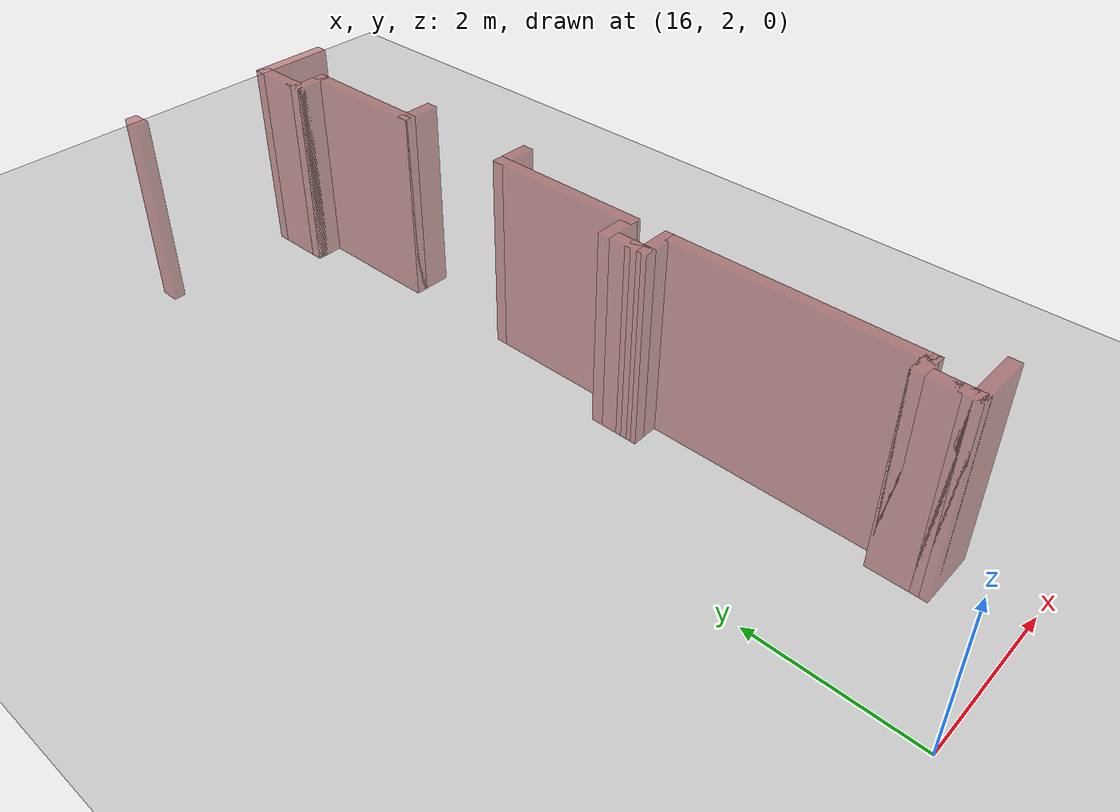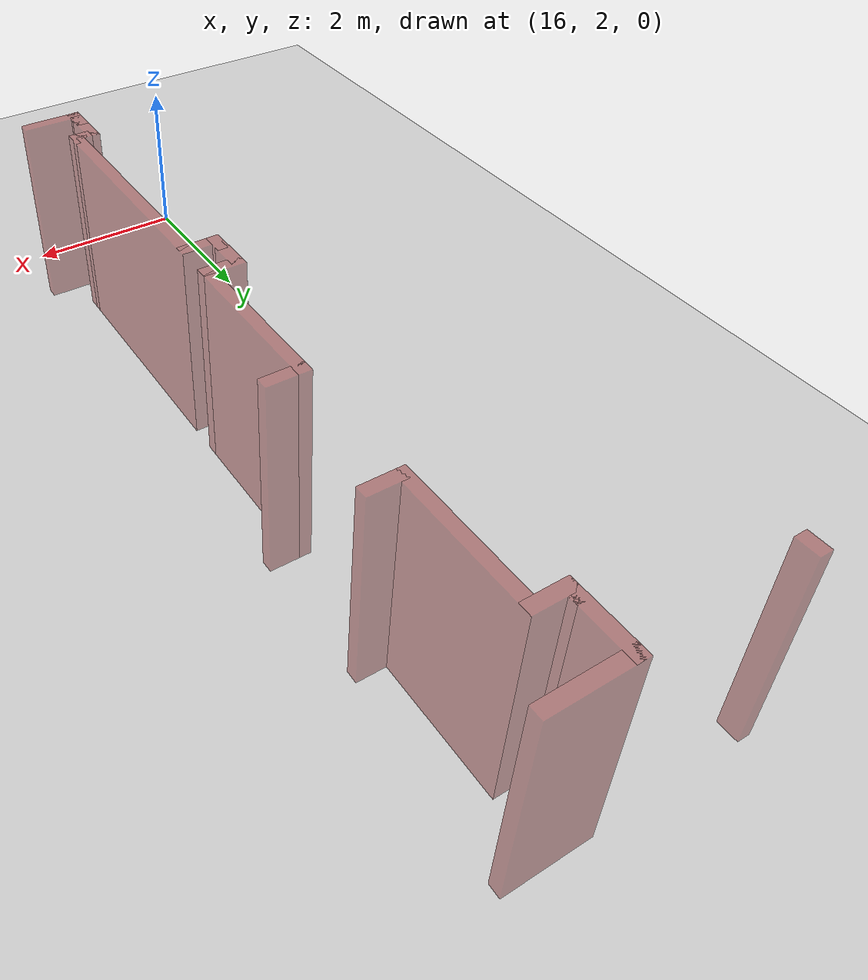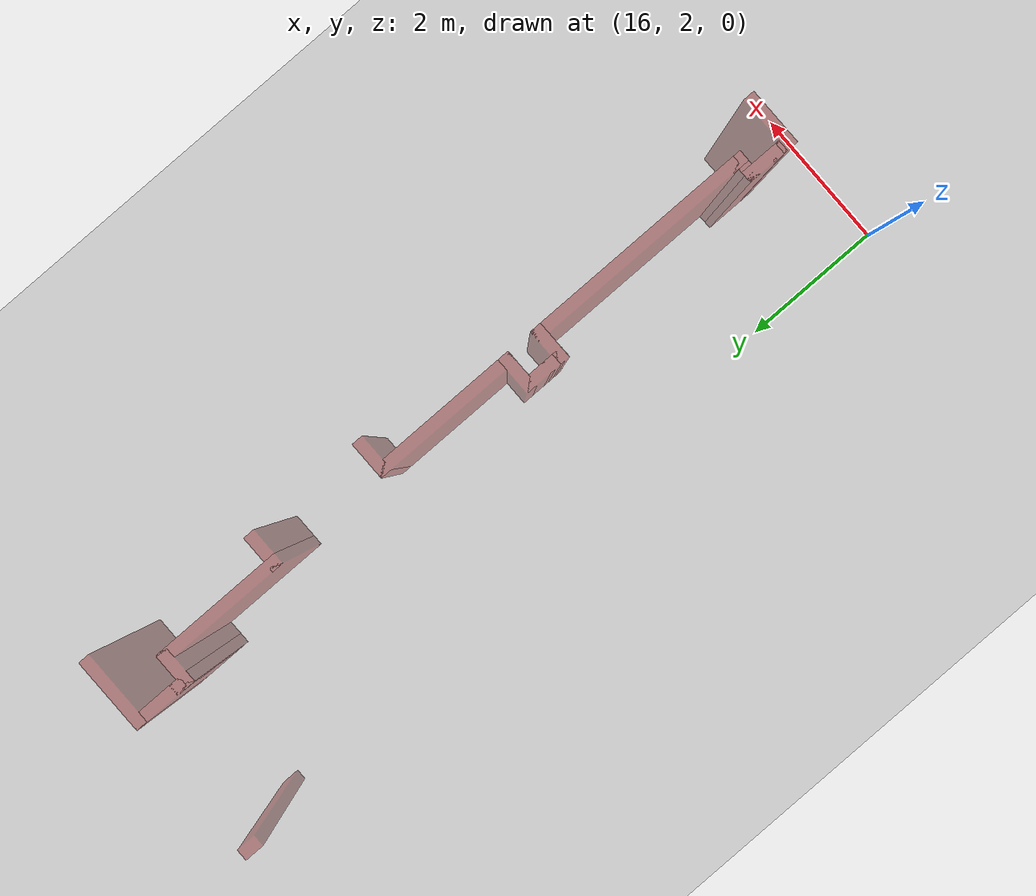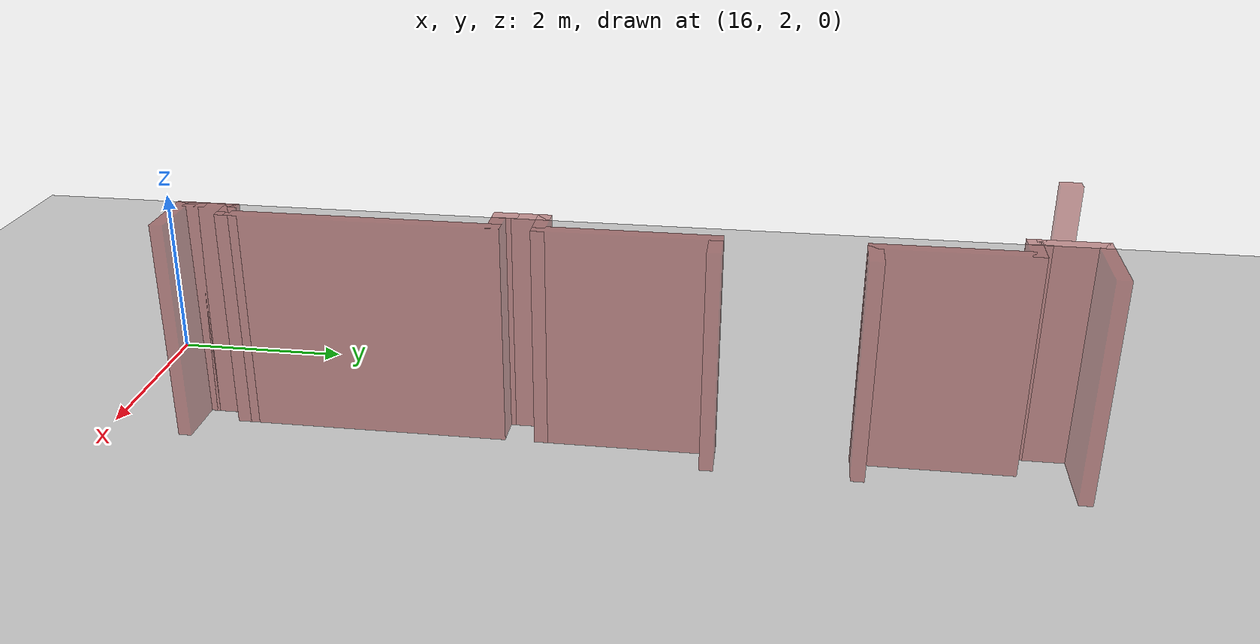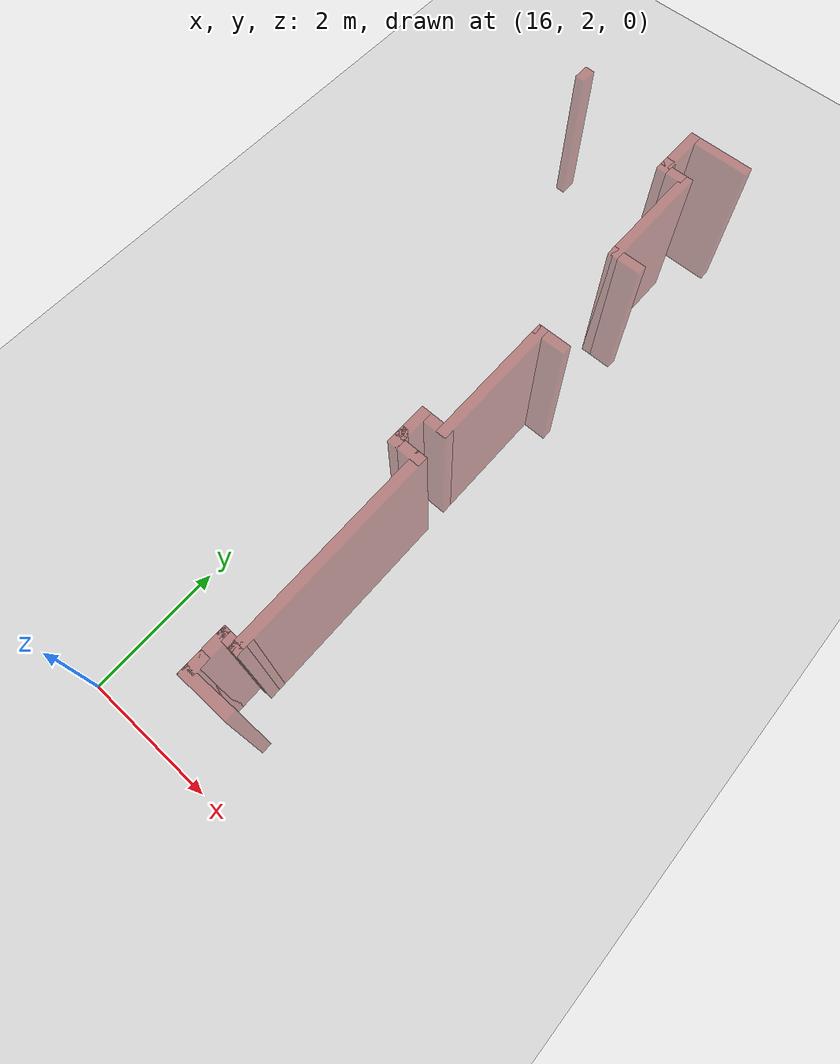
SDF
<sdf version="1.7">
 <world name="default">
  <model name="ground_plane">
   <static>1</static>
   <link name="link">
    <collision name="collision">
     <geometry><plane><normal>0 0 1</normal><size>150 150</size></plane></geometry>
     <surface>
      <contact><collide_bitmask>65535</collide_bitmask></contact>
      <friction><ode><mu>100</mu><mu2>50</mu2></ode></friction>
     </surface>
    </collision>
    <visual name="visual">
     <cast_shadows>0</cast_shadows>
     <geometry><plane><normal>0 0 1</normal><size>100 100</size></plane></geometry>
     <material>
      <ambient>0.8 0.8 0.8 1.0</ambient>
      <diffuse>0.8 0.8 0.8 1.0</diffuse>
      <specular>0.1 0.1 0.1 1.0</specular>
      <pbr><metal><albedo>0.8 0.8 0.8 1.0</albedo><metalness>0.0</metalness><roughness>0.9</roughness></metal></pbr>
     </material>
    </visual>
   </link>
  </model>
  <model name="acopian_4th_floor">
   <pose>-1.6204 7.29653 0 0 -0 0</pose>
   <link name="Wall_272">
    <collision name="Wall_272_Collision">
     <geometry><box><size>0.25 0.15 2.5</size></box></geometry>
     <pose>0 0 1.25 0 -0 0</pose>
    </collision>
    <visual name="Wall_272_Visual">
     <pose>0 0 1.25 0 -0 0</pose>
     <geometry><box><size>0.25 0.15 2.5</size></box></geometry>
     <material>
      <ambient>0.5 0.0 0.0 0.4</ambient>
      <diffuse>0.5 0.0 0.0 0.4</diffuse>
      <specular>0.1 0.1 0.1 0.4</specular>
      <pbr><metal><albedo>0.5 0.0 0.0 0.4</albedo><metalness>0.1</metalness><roughness>0.8</roughness></metal></pbr>
     </material>
     <meta><layer>0</layer></meta>
    </visual>
    <pose>17.1253 5.32153 0 0 -0 1.5708</pose>
   </link>
   <link name="Wall_376">
    <collision name="Wall_376_Collision">
     <geometry><box><size>0.75 0.15 2.5</size></box></geometry>
     <pose>0 0 1.25 0 -0 0</pose>
    </collision>
    <visual name="Wall_376_Visual">
     <pose>0 0 1.25 0 -0 0</pose>
     <geometry><box><size>0.75 0.15 2.5</size></box></geometry>
     <material>
      <ambient>0.5 0.0 0.0 0.4</ambient>
      <diffuse>0.5 0.0 0.0 0.4</diffuse>
      <specular>0.1 0.1 0.1 0.4</specular>
      <pbr><metal><albedo>0.5 0.0 0.0 0.4</albedo><metalness>0.1</metalness><roughness>0.8</roughness></metal></pbr>
     </material>
     <meta><layer>0</layer></meta>
    </visual>
    <pose>19.0117 5.0502 0 0 -0 -1.5708</pose>
   </link>
   <link name="Wall_377">
    <collision name="Wall_377_Collision">
     <geometry><box><size>0.25 0.15 2.5</size></box></geometry>
     <pose>0 0 1.25 0 -0 0</pose>
    </collision>
    <visual name="Wall_377_Visual">
     <pose>0 0 1.25 0 -0 0</pose>
     <geometry><box><size>0.25 0.15 2.5</size></box></geometry>
     <material>
      <ambient>0.5 0.0 0.0 0.4</ambient>
      <diffuse>0.5 0.0 0.0 0.4</diffuse>
      <specular>0.1 0.1 0.1 0.4</specular>
      <pbr><metal><albedo>0.5 0.0 0.0 0.4</albedo><metalness>0.1</metalness><roughness>0.8</roughness></metal></pbr>
     </material>
     <meta><layer>0</layer></meta>
    </visual>
    <pose>19.0117 4.7002 0 0 -0 -1.5708</pose>
   </link>
   <link name="Wall_378">
    <collision name="Wall_378_Collision">
     <geometry><box><size>0.5 0.15 2.5</size></box></geometry>
     <pose>0 0 1.25 0 -0 0</pose>
    </collision>
    <visual name="Wall_378_Visual">
     <pose>0 0 1.25 0 -0 0</pose>
     <geometry><box><size>0.5 0.15 2.5</size></box></geometry>
     <material>
      <ambient>0.5 0.0 0.0 0.4</ambient>
      <diffuse>0.5 0.0 0.0 0.4</diffuse>
      <specular>0.1 0.1 0.1 0.4</specular>
      <pbr><metal><albedo>0.5 0.0 0.0 0.4</albedo><metalness>0.1</metalness><roughness>0.8</roughness></metal></pbr>
     </material>
     <meta><layer>0</layer></meta>
    </visual>
    <pose>19.1867 4.6502 0 0 -0 0</pose>
   </link>
   <link name="Wall_379">
    <collision name="Wall_379_Collision">
     <geometry><box><size>1.75 0.15 2.5</size></box></geometry>
     <pose>0 0 1.25 0 -0 0</pose>
    </collision>
    <visual name="Wall_379_Visual">
     <pose>0 0 1.25 0 -0 0</pose>
     <geometry><box><size>1.75 0.15 2.5</size></box></geometry>
     <material>
      <ambient>0.5 0.0 0.0 0.4</ambient>
      <diffuse>0.5 0.0 0.0 0.4</diffuse>
      <specular>0.1 0.1 0.1 0.4</specular>
      <pbr><metal><albedo>0.5 0.0 0.0 0.4</albedo><metalness>0.1</metalness><roughness>0.8</roughness></metal></pbr>
     </material>
     <meta><layer>0</layer></meta>
    </visual>
    <pose>19.3617 3.8502 0 0 -0 -1.5708</pose>
   </link>
   <link name="Wall_380">
    <collision name="Wall_380_Collision">
     <geometry><box><size>0.5 0.15 2.5</size></box></geometry>
     <pose>0 0 1.25 0 -0 0</pose>
    </collision>
    <visual name="Wall_380_Visual">
     <pose>0 0 1.25 0 -0 0</pose>
     <geometry><box><size>0.5 0.15 2.5</size></box></geometry>
     <material>
      <ambient>0.5 0.0 0.0 0.4</ambient>
      <diffuse>0.5 0.0 0.0 0.4</diffuse>
      <specular>0.1 0.1 0.1 0.4</specular>
      <pbr><metal><albedo>0.5 0.0 0.0 0.4</albedo><metalness>0.1</metalness><roughness>0.8</roughness></metal></pbr>
     </material>
     <meta><layer>0</layer></meta>
    </visual>
    <pose>19.5367 3.0502 0 0 -0 0</pose>
   </link>
   <link name="Wall_382">
    <collision name="Wall_382_Collision">
     <geometry><box><size>0.5 0.15 2.5</size></box></geometry>
     <pose>0 0 1.25 0 -0 0</pose>
    </collision>
    <visual name="Wall_382_Visual">
     <pose>0 0 1.25 0 -0 0</pose>
     <geometry><box><size>0.5 0.15 2.5</size></box></geometry>
     <material>
      <ambient>0.5 0.0 0.0 0.4</ambient>
      <diffuse>0.5 0.0 0.0 0.4</diffuse>
      <specular>0.1 0.1 0.1 0.4</specular>
      <pbr><metal><albedo>0.5 0.0 0.0 0.4</albedo><metalness>0.1</metalness><roughness>0.8</roughness></metal></pbr>
     </material>
     <meta><layer>0</layer></meta>
    </visual>
    <pose>19.5367 1.4502 0 0 -0 3.14159</pose>
   </link>
   <link name="Wall_389">
    <collision name="Wall_389_Collision">
     <geometry><box><size>2 0.15 2.5</size></box></geometry>
     <pose>0 0 1.25 0 -0 0</pose>
    </collision>
    <visual name="Wall_389_Visual">
     <pose>0 0 1.25 0 -0 0</pose>
     <geometry><box><size>2 0.15 2.5</size></box></geometry>
     <material>
      <ambient>0.5 0.0 0.0 0.4</ambient>
      <diffuse>0.5 0.0 0.0 0.4</diffuse>
      <specular>0.1 0.1 0.1 0.4</specular>
      <pbr><metal><albedo>0.5 0.0 0.0 0.4</albedo><metalness>0.1</metalness><roughness>0.8</roughness></metal></pbr>
     </material>
     <meta><layer>0</layer></meta>
    </visual>
    <pose>19.3617 0.525203 0 0 -0 -1.5708</pose>
   </link>
   <link name="Wall_390">
    <collision name="Wall_390_Collision">
     <geometry><box><size>0.5 0.15 2.5</size></box></geometry>
     <pose>0 0 1.25 0 -0 0</pose>
    </collision>
    <visual name="Wall_390_Visual">
     <pose>0 0 1.25 0 -0 0</pose>
     <geometry><box><size>0.5 0.15 2.5</size></box></geometry>
     <material>
      <ambient>0.5 0.0 0.0 0.4</ambient>
      <diffuse>0.5 0.0 0.0 0.4</diffuse>
      <specular>0.1 0.1 0.1 0.4</specular>
      <pbr><metal><albedo>0.5 0.0 0.0 0.4</albedo><metalness>0.1</metalness><roughness>0.8</roughness></metal></pbr>
     </material>
     <meta><layer>0</layer></meta>
    </visual>
    <pose>19.1867 -0.399797 0 0 -0 3.14159</pose>
   </link>
   <link name="Wall_391">
    <collision name="Wall_391_Collision">
     <geometry><box><size>0.5 0.15 2.5</size></box></geometry>
     <pose>0 0 1.25 0 -0 0</pose>
    </collision>
    <visual name="Wall_391_Visual">
     <pose>0 0 1.25 0 -0 0</pose>
     <geometry><box><size>0.5 0.15 2.5</size></box></geometry>
     <material>
      <ambient>0.5 0.0 0.0 0.4</ambient>
      <diffuse>0.5 0.0 0.0 0.4</diffuse>
      <specular>0.1 0.1 0.1 0.4</specular>
      <pbr><metal><albedo>0.5 0.0 0.0 0.4</albedo><metalness>0.1</metalness><roughness>0.8</roughness></metal></pbr>
     </material>
     <meta><layer>0</layer></meta>
    </visual>
    <pose>19.0117 -0.574797 0 0 -0 -1.5708</pose>
   </link>
   <link name="Wall_392">
    <collision name="Wall_392_Collision">
     <geometry><box><size>0.279664 0.15 2.5</size></box></geometry>
     <pose>0 0 1.25 0 -0 0</pose>
    </collision>
    <visual name="Wall_392_Visual">
     <pose>0 0 1.25 0 -0 0</pose>
     <geometry><box><size>0.279664 0.15 2.5</size></box></geometry>
     <material>
      <ambient>0.5 0.0 0.0 0.4</ambient>
      <diffuse>0.5 0.0 0.0 0.4</diffuse>
      <specular>0.1 0.1 0.1 0.4</specular>
      <pbr><metal><albedo>0.5 0.0 0.0 0.4</albedo><metalness>0.1</metalness><roughness>0.8</roughness></metal></pbr>
     </material>
     <meta><layer>0</layer></meta>
    </visual>
    <pose>19.0121 -0.814628 0 0 -0 -1.56499</pose>
   </link>
   <link name="Wall_393">
    <collision name="Wall_393_Collision">
     <geometry><box><size>0.5 0.15 2.5</size></box></geometry>
     <pose>0 0 1.25 0 -0 0</pose>
    </collision>
    <visual name="Wall_393_Visual">
     <pose>0 0 1.25 0 -0 0</pose>
     <geometry><box><size>0.5 0.15 2.5</size></box></geometry>
     <material>
      <ambient>0.5 0.0 0.0 0.4</ambient>
      <diffuse>0.5 0.0 0.0 0.4</diffuse>
      <specular>0.1 0.1 0.1 0.4</specular>
      <pbr><metal><albedo>0.5 0.0 0.0 0.4</albedo><metalness>0.1</metalness><roughness>0.8</roughness></metal></pbr>
     </material>
     <meta><layer>0</layer></meta>
    </visual>
    <pose>19.1875 -0.876987 0 0 -0 0</pose>
   </link>
   <link name="Wall_395">
    <collision name="Wall_395_Collision">
     <geometry><box><size>3 0.15 2.5</size></box></geometry>
     <pose>0 0 1.25 0 -0 0</pose>
    </collision>
    <visual name="Wall_395_Visual">
     <pose>0 0 1.25 0 -0 0</pose>
     <geometry><box><size>3 0.15 2.5</size></box></geometry>
     <material>
      <ambient>0.5 0.0 0.0 0.4</ambient>
      <diffuse>0.5 0.0 0.0 0.4</diffuse>
      <specular>0.1 0.1 0.1 0.4</specular>
      <pbr><metal><albedo>0.5 0.0 0.0 0.4</albedo><metalness>0.1</metalness><roughness>0.8</roughness></metal></pbr>
     </material>
     <meta><layer>0</layer></meta>
    </visual>
    <pose>19.3625 -2.30199 0 0 -0 -1.5708</pose>
   </link>
   <link name="Wall_399">
    <collision name="Wall_399_Collision">
     <geometry><box><size>0.25 0.15 2.5</size></box></geometry>
     <pose>0 0 1.25 0 -0 0</pose>
    </collision>
    <visual name="Wall_399_Visual">
     <pose>0 0 1.25 0 -0 0</pose>
     <geometry><box><size>0.25 0.15 2.5</size></box></geometry>
     <material>
      <ambient>0.5 0.0 0.0 0.4</ambient>
      <diffuse>0.5 0.0 0.0 0.4</diffuse>
      <specular>0.1 0.1 0.1 0.4</specular>
      <pbr><metal><albedo>0.5 0.0 0.0 0.4</albedo><metalness>0.1</metalness><roughness>0.8</roughness></metal></pbr>
     </material>
     <meta><layer>0</layer></meta>
    </visual>
    <pose>19.3625 -3.77699 0 0 -0 -1.5708</pose>
   </link>
   <link name="Wall_400">
    <collision name="Wall_400_Collision">
     <geometry><box><size>0.25 0.15 2.5</size></box></geometry>
     <pose>0 0 1.25 0 -0 0</pose>
    </collision>
    <visual name="Wall_400_Visual">
     <pose>0 0 1.25 0 -0 0</pose>
     <geometry><box><size>0.25 0.15 2.5</size></box></geometry>
     <material>
      <ambient>0.5 0.0 0.0 0.4</ambient>
      <diffuse>0.5 0.0 0.0 0.4</diffuse>
      <specular>0.1 0.1 0.1 0.4</specular>
      <pbr><metal><albedo>0.5 0.0 0.0 0.4</albedo><metalness>0.1</metalness><roughness>0.8</roughness></metal></pbr>
     </material>
     <meta><layer>0</layer></meta>
    </visual>
    <pose>19.3125 -3.82699 0 0 -0 3.14159</pose>
   </link>
   <link name="Wall_401">
    <collision name="Wall_401_Collision">
     <geometry><box><size>0.25 0.15 2.5</size></box></geometry>
     <pose>0 0 1.25 0 -0 0</pose>
    </collision>
    <visual name="Wall_401_Visual">
     <pose>0 0 1.25 0 -0 0</pose>
     <geometry><box><size>0.25 0.15 2.5</size></box></geometry>
     <material>
      <ambient>0.5 0.0 0.0 0.4</ambient>
      <diffuse>0.5 0.0 0.0 0.4</diffuse>
      <specular>0.1 0.1 0.1 0.4</specular>
      <pbr><metal><albedo>0.5 0.0 0.0 0.4</albedo><metalness>0.1</metalness><roughness>0.8</roughness></metal></pbr>
     </material>
     <meta><layer>0</layer></meta>
    </visual>
    <pose>19.2125 -3.82699 0 0 -0 3.14159</pose>
   </link>
   <link name="Wall_402">
    <collision name="Wall_402_Collision">
     <geometry><box><size>0.5 0.15 2.5</size></box></geometry>
     <pose>0 0 1.25 0 -0 0</pose>
    </collision>
    <visual name="Wall_402_Visual">
     <pose>0 0 1.25 0 -0 0</pose>
     <geometry><box><size>0.5 0.15 2.5</size></box></geometry>
     <material>
      <ambient>0.5 0.0 0.0 0.4</ambient>
      <diffuse>0.5 0.0 0.0 0.4</diffuse>
      <specular>0.1 0.1 0.1 0.4</specular>
      <pbr><metal><albedo>0.5 0.0 0.0 0.4</albedo><metalness>0.1</metalness><roughness>0.8</roughness></metal></pbr>
     </material>
     <meta><layer>0</layer></meta>
    </visual>
    <pose>19.1625 -4.00199 0 0 -0 -1.5708</pose>
   </link>
   <link name="Wall_403">
    <collision name="Wall_403_Collision">
     <geometry><box><size>0.25 0.15 2.5</size></box></geometry>
     <pose>0 0 1.25 0 -0 0</pose>
    </collision>
    <visual name="Wall_403_Visual">
     <pose>0 0 1.25 0 -0 0</pose>
     <geometry><box><size>0.25 0.15 2.5</size></box></geometry>
     <material>
      <ambient>0.5 0.0 0.0 0.4</ambient>
      <diffuse>0.5 0.0 0.0 0.4</diffuse>
      <specular>0.1 0.1 0.1 0.4</specular>
      <pbr><metal><albedo>0.5 0.0 0.0 0.4</albedo><metalness>0.1</metalness><roughness>0.8</roughness></metal></pbr>
     </material>
     <meta><layer>0</layer></meta>
    </visual>
    <pose>19.1625 -4.22699 0 0 -0 -1.5708</pose>
   </link>
   <link name="Wall_404">
    <collision name="Wall_404_Collision">
     <geometry><box><size>0.25 0.15 2.5</size></box></geometry>
     <pose>0 0 1.25 0 -0 0</pose>
    </collision>
    <visual name="Wall_404_Visual">
     <pose>0 0 1.25 0 -0 0</pose>
     <geometry><box><size>0.25 0.15 2.5</size></box></geometry>
     <material>
      <ambient>0.5 0.0 0.0 0.4</ambient>
      <diffuse>0.5 0.0 0.0 0.4</diffuse>
      <specular>0.1 0.1 0.1 0.4</specular>
      <pbr><metal><albedo>0.5 0.0 0.0 0.4</albedo><metalness>0.1</metalness><roughness>0.8</roughness></metal></pbr>
     </material>
     <meta><layer>0</layer></meta>
    </visual>
    <pose>19.1625 -4.32699 0 0 -0 -1.5708</pose>
   </link>
   <link name="Wall_405">
    <collision name="Wall_405_Collision">
     <geometry><box><size>0.75 0.15 2.5</size></box></geometry>
     <pose>0 0 1.25 0 -0 0</pose>
    </collision>
    <visual name="Wall_405_Visual">
     <pose>0 0 1.25 0 -0 0</pose>
     <geometry><box><size>0.75 0.15 2.5</size></box></geometry>
     <material>
      <ambient>0.5 0.0 0.0 0.4</ambient>
      <diffuse>0.5 0.0 0.0 0.4</diffuse>
      <specular>0.1 0.1 0.1 0.4</specular>
      <pbr><metal><albedo>0.5 0.0 0.0 0.4</albedo><metalness>0.1</metalness><roughness>0.8</roughness></metal></pbr>
     </material>
     <meta><layer>0</layer></meta>
    </visual>
    <pose>19.4625 -4.37699 0 0 -0 0</pose>
   </link>
   <link name="Wall_427">
    <collision name="Wall_427_Collision">
     <geometry><box><size>1 0.15 2.5</size></box></geometry>
     <pose>0 0 1.25 0 -0 0</pose>
    </collision>
    <visual name="Wall_427_Visual">
     <pose>0 0 1.25 0 -0 0</pose>
     <geometry><box><size>1 0.15 2.5</size></box></geometry>
     <material>
      <ambient>0.5 0.0 0.0 0.4</ambient>
      <diffuse>0.5 0.0 0.0 0.4</diffuse>
      <specular>0.1 0.1 0.1 0.4</specular>
      <pbr><metal><albedo>0.5 0.0 0.0 0.4</albedo><metalness>0.1</metalness><roughness>0.8</roughness></metal></pbr>
     </material>
     <meta><layer>0</layer></meta>
    </visual>
    <pose>19.4367 5.3502 0 0 -0 0</pose>
   </link>
   <static>1</static>
  </model>
 </world>
</sdf>
